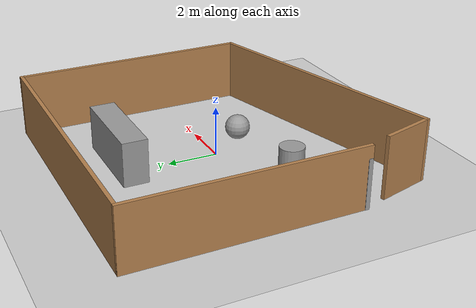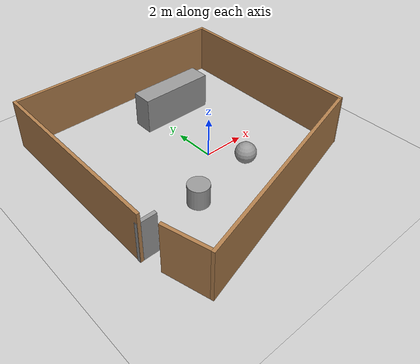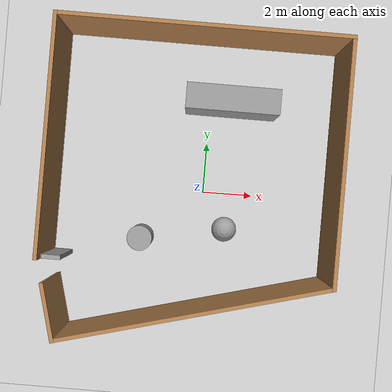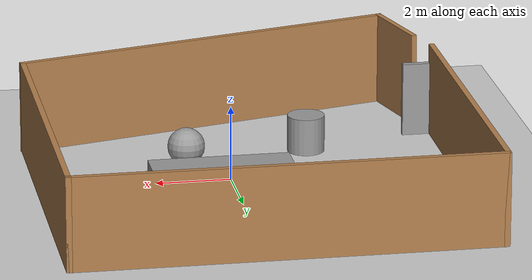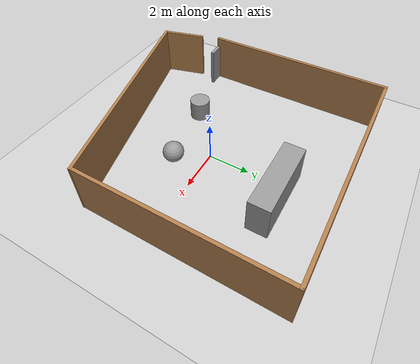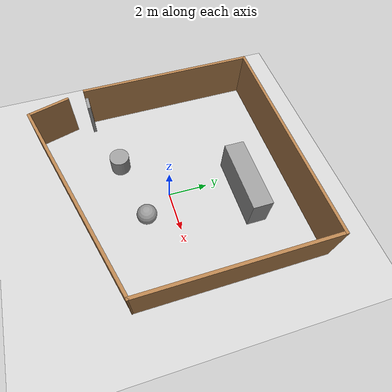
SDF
<sdf version="1.7">
 <world name="default">
  <light name="sun" type="directional">
   <pose>0 0 10 0 -0 0</pose>
   <diffuse>0.8 0.8 0.8 1</diffuse>
   <specular>0.2 0.2 0.2 1</specular>
   <attenuation>
    <range>1000</range>
    <constant>0.9</constant>
    <linear>0.01</linear>
    <quadratic>0.001</quadratic>
   </attenuation>
   <direction>-0.5 0.1 -0.9</direction>
   <spot><inner_angle>0</inner_angle><outer_angle>0</outer_angle><falloff>0</falloff></spot>
  </light>
  <model name="ground_plane">
   <static>1</static>
   <link name="link">
    <collision name="collision">
     <geometry><plane><normal>0 0 1</normal><size>100 100</size></plane></geometry>
     <surface><friction><ode><mu>100</mu><mu2>50</mu2></ode></friction></surface>
    </collision>
    <visual name="visual">
     <cast_shadows>0</cast_shadows>
     <geometry><plane><normal>0 0 1</normal><size>100 100</size></plane></geometry>
     <material>
      <script><uri>file://media/materials/scripts/gazebo.material</uri><name>Gazebo/Grey</name></script>
     </material>
    </visual>
   </link>
  </model>
  <gravity>0 0 -9.8</gravity>
  <magnetic_field>6e-06 2.3e-05 -4.2e-05</magnetic_field>
  <atmosphere type="adiabatic"/>
  <physics type="ode">
   <max_step_size>0.001</max_step_size>
   <real_time_factor>1</real_time_factor>
   <real_time_update_rate>1000</real_time_update_rate>
  </physics>
  <scene><ambient>0.4 0.4 0.4 1</ambient><background>0.7 0.7 0.7 1</background><shadows>1</shadows></scene>
  <spherical_coordinates>
   <surface_model>EARTH_WGS84</surface_model>
   <latitude_deg>0</latitude_deg>
   <longitude_deg>0</longitude_deg>
   <elevation>0</elevation>
   <heading_deg>0</heading_deg>
  </spherical_coordinates>
  <model name="test_1">
   <pose>-0.45154 0.125915 0 0 -0 0</pose>
   <link name="Door_0">
    <collision name="Door_0_Collision">
     <geometry><box><size>0.9 0.17 2</size></box></geometry>
     <pose>0 0 1 0 -0 0</pose>
    </collision>
    <visual name="Door_0_Visual">
     <pose>0 0 1 0 -0 0</pose>
     <geometry><box><size>0.9 0.17 2</size></box></geometry>
     <material>
      <script><uri>file://media/materials/scripts/gazebo.material</uri><name>Gazebo/Grey</name></script>
     </material>
    </visual>
    <pose>-5.19661 -3.02685 0 0 -0 0</pose>
   </link>
   <link name="Wall_13">
    <collision name="Wall_13_Collision">
     <geometry><box><size>2.25 0.15 2.5</size></box></geometry>
     <pose>0 0 1.25 0 -0 0</pose>
    </collision>
    <visual name="Wall_13_Visual">
     <pose>0 0 1.25 0 -0 0</pose>
     <geometry><box><size>2.25 0.15 2.5</size></box></geometry>
     <material>
      <script><uri>file://media/materials/scripts/gazebo.material</uri><name>Gazebo/Wood</name></script>
      <ambient>0.435294 0.796078 0.67451 1</ambient>
     </material>
     <meta><layer>0</layer></meta>
    </visual>
    <pose>-4.969 -5.02409 0 0 -0 1.8326</pose>
   </link>
   <link name="Wall_5">
    <collision name="Wall_5_Collision">
     <geometry><box><size>9.25 0.15 2.5</size></box></geometry>
     <pose>0 0 1.25 0 -0 0</pose>
    </collision>
    <visual name="Wall_5_Visual">
     <pose>0 0 1.25 0 -0 0</pose>
     <geometry><box><size>9.25 0.15 2.5</size></box></geometry>
     <material>
      <script><uri>file://media/materials/scripts/gazebo.material</uri><name>Gazebo/Wood</name></script>
      <ambient>0.435294 0.796078 0.67451 1</ambient>
     </material>
     <meta><layer>0</layer></meta>
    </visual>
    <pose>-5.55843 1.50517 0 0 -0 1.5708</pose>
   </link>
   <link name="Wall_6">
    <collision name="Wall_6_Collision">
     <geometry><box><size>11.25 0.15 2.5</size></box></geometry>
     <pose>0 0 1.25 0 -0 0</pose>
    </collision>
    <visual name="Wall_6_Visual">
     <pose>0 0 1.25 0 -0 0</pose>
     <geometry><box><size>11.25 0.15 2.5</size></box></geometry>
     <material>
      <script><uri>file://media/materials/scripts/gazebo.material</uri><name>Gazebo/Wood</name></script>
      <ambient>0.435294 0.796078 0.67451 1</ambient>
     </material>
     <meta><layer>0</layer></meta>
    </visual>
    <pose>-0.008428 6.05517 0 0 -0 0</pose>
   </link>
   <link name="Wall_8">
    <collision name="Wall_8_Collision">
     <geometry><box><size>9.5 0.15 2.5</size></box></geometry>
     <pose>0 0 1.25 0 -0 0</pose>
    </collision>
    <visual name="Wall_8_Visual">
     <pose>0 0 1.25 0 -0 0</pose>
     <geometry><box><size>9.5 0.15 2.5</size></box></geometry>
     <material>
      <script><uri>file://media/materials/scripts/gazebo.material</uri><name>Gazebo/Wood</name></script>
      <ambient>0.435294 0.796078 0.67451 1</ambient>
     </material>
     <meta><layer>0</layer></meta>
    </visual>
    <pose>5.54157 1.38017 0 0 -0 -1.5708</pose>
   </link>
   <link name="Wall_9">
    <collision name="Wall_9_Collision">
     <geometry><box><size>10.75 0.15 2.5</size></box></geometry>
     <pose>0 0 1.25 0 -0 0</pose>
    </collision>
    <visual name="Wall_9_Visual">
     <pose>0 0 1.25 0 -0 0</pose>
     <geometry><box><size>10.75 0.15 2.5</size></box></geometry>
     <material>
      <script><uri>file://media/materials/scripts/gazebo.material</uri><name>Gazebo/Wood</name></script>
      <ambient>0.435294 0.796078 0.67451 1</ambient>
     </material>
     <meta><layer>0</layer></meta>
    </visual>
    <pose>0.422165 -4.66657 0 0 -0 -2.87979</pose>
   </link>
   <static>1</static>
  </model>
  <model name="unit_box">
   <pose>0.851539 3.68081 0.8862 0 -0.000127 -0.00044</pose>
   <link name="link">
    <inertial>
     <mass>1</mass>
     <inertia>
      <ixx>0.166667</ixx>
      <ixy>0</ixy>
      <ixz>0</ixz>
      <iyy>0.166667</iyy>
      <iyz>0</iyz>
      <izz>0.166667</izz>
     </inertia>
    </inertial>
    <collision name="collision"><geometry><box><size>3.64719 1 1.77286</size></box></geometry></collision>
    <visual name="visual">
     <geometry><box><size>3.64719 1 1.77286</size></box></geometry>
     <material>
      <script><name>Gazebo/Grey</name><uri>file://media/materials/scripts/gazebo.material</uri></script>
     </material>
    </visual>
   </link>
  </model>
  <model name="unit_cylinder">
   <pose>-2.38318 -2.01779 0.499993 -3e-06 -4e-06 -0</pose>
   <link name="link">
    <inertial>
     <mass>1</mass>
     <inertia><ixx>0.145833</ixx><ixy>0</ixy><ixz>0</ixz><iyy>0.145833</iyy><iyz>0</iyz><izz>0.125</izz></inertia>
    </inertial>
    <collision name="collision">
     <geometry><cylinder><radius>0.5</radius><length>1</length></cylinder></geometry>
    </collision>
    <visual name="visual">
     <geometry><cylinder><radius>0.5</radius><length>1</length></cylinder></geometry>
     <material>
      <script><name>Gazebo/Grey</name><uri>file://media/materials/scripts/gazebo.material</uri></script>
     </material>
    </visual>
   </link>
  </model>
  <model name="unit_sphere">
   <pose>0.962386 -1.43028 0.5 0 -0 0</pose>
   <link name="link">
    <inertial>
     <mass>1</mass>
     <inertia><ixx>0.1</ixx><ixy>0</ixy><ixz>0</ixz><iyy>0.1</iyy><iyz>0</iyz><izz>0.1</izz></inertia>
    </inertial>
    <collision name="collision"><geometry><sphere><radius>0.5</radius></sphere></geometry></collision>
    <visual name="visual">
     <geometry><sphere><radius>0.5</radius></sphere></geometry>
     <material>
      <script><name>Gazebo/Grey</name><uri>file://media/materials/scripts/gazebo.material</uri></script>
     </material>
    </visual>
   </link>
  </model>
 </world>
</sdf>
